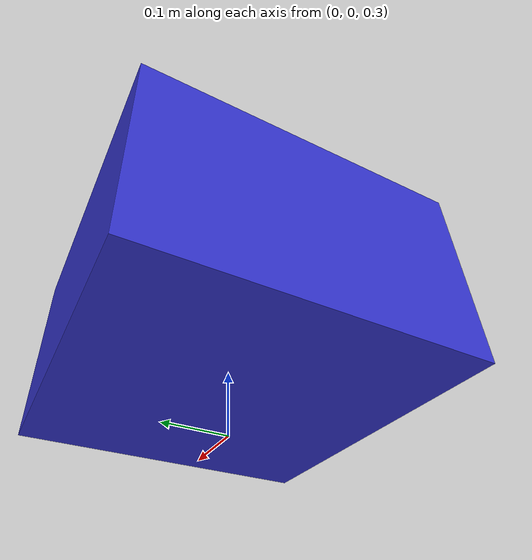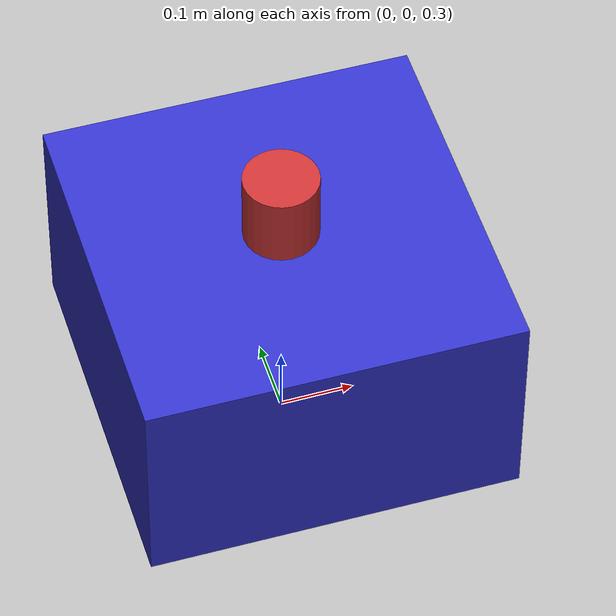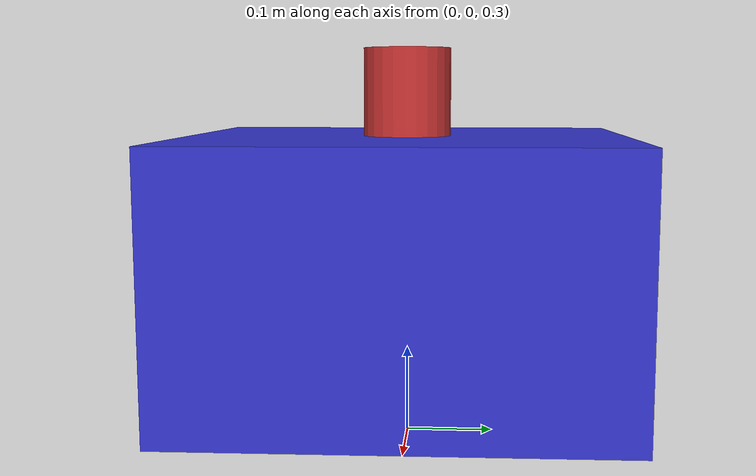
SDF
<?xml version="1.0" ?>
<sdf version="1.6">
  <model name="lidar_robot">
    <pose>0 0 0.5 0 0 0</pose>
    <static>false</static>

    <!-- Base link -->
    <link name="base_link">
      <collision name="collision">
        <geometry>
          <box>
            <size>0.5 0.5 0.3</size>
          </box>
        </geometry>
      </collision>
      <visual name="visual">
        <geometry>
          <box>
            <size>0.5 0.5 0.3</size>
          </box>
        </geometry>
        <material>
          <ambient>0.2 0.2 0.8 1</ambient>
          <diffuse>0.2 0.2 0.8 1</diffuse>
        </material>
      </visual>
      <inertial>
        <mass>10</mass>
        <inertia>
          <ixx>0.1</ixx>
          <iyy>0.1</iyy>
          <izz>0.1</izz>
        </inertia>
      </inertial>
    </link>

    <!-- LiDAR sensor -->
    <link name="lidar_link">
      <pose>0 0 0.2 0 0 0</pose>
      <collision name="collision">
        <geometry>
          <cylinder>
            <radius>0.05</radius>
            <length>0.1</length>
          </cylinder>
        </geometry>
      </collision>
      <visual name="visual">
        <geometry>
          <cylinder>
            <radius>0.05</radius>
            <length>0.1</length>
          </cylinder>
        </geometry>
        <material>
          <ambient>0.8 0.2 0.2 1</ambient>
          <diffuse>0.8 0.2 0.2 1</diffuse>
        </material>
      </visual>
      <inertial>
        <mass>0.1</mass>
        <inertia>
          <ixx>0.001</ixx>
          <iyy>0.001</iyy>
          <izz>0.001</izz>
        </inertia>
      </inertial>

      <!-- 3D LiDAR sensor -->
      <sensor name="lidar_sensor" type="gpu_ray">
        <pose>0 0 0 0 0 0</pose>
        <visualize>true</visualize>
        <update_rate>10</update_rate>
        <ray>
          <scan>
            <horizontal>
              <samples>720</samples>
              <resolution>1</resolution>
              <min_angle>-3.14159</min_angle>
              <max_angle>3.14159</max_angle>
            </horizontal>
            <vertical>
              <samples>64</samples>
              <resolution>1</resolution>
              <min_angle>-0.4</min_angle>
              <max_angle>0.4</max_angle>
            </vertical>
          </scan>
          <range>
            <min>0.1</min>
            <max>30.0</max>
            <resolution>0.01</resolution>
          </range>
        </ray>
        <plugin name="gazebo_ros_ray_sensor" filename="libgazebo_ros_ray_sensor.so">
          <ros>
            <remapping>~/out:=/scan</remapping>
          </ros>
          <output_type>sensor_msgs/PointCloud2</output_type>
          <frame_name>lidar_link</frame_name>
        </plugin>
      </sensor>
    </link>

    <!-- Joint between base and lidar -->
    <joint name="lidar_joint" type="fixed">
      <parent>base_link</parent>
      <child>lidar_link</child>
      <pose>0 0 0.2 0 0 0</pose>
    </joint>
  </model>
</sdf>
